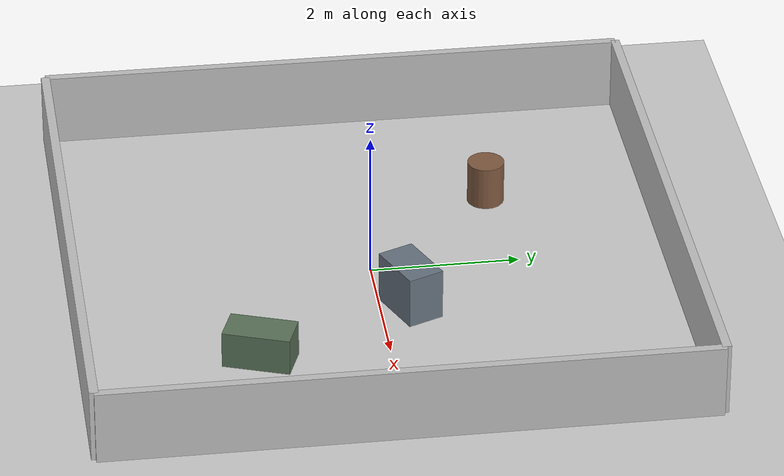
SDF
<?xml version="1.0"?>
<sdf version="1.6">
  <world name="indoor_test">
    <include>
      <uri>model://ground_plane</uri>
    </include>
    <include>
      <uri>model://sun</uri>
    </include>

    <physics name="default_physics" type="ode">
      <max_step_size>0.001</max_step_size>
      <real_time_update_rate>1000</real_time_update_rate>
    </physics>

    <model name="north_wall">
      <static>true</static>
      <pose>0 4 0.5 0 0 0</pose>
      <link name="link">
        <collision name="collision">
          <geometry>
            <box>
              <size>8 0.12 1.0</size>
            </box>
          </geometry>
        </collision>
        <visual name="visual">
          <geometry>
            <box>
              <size>8 0.12 1.0</size>
            </box>
          </geometry>
          <material>
            <ambient>0.75 0.75 0.75 1</ambient>
            <diffuse>0.75 0.75 0.75 1</diffuse>
          </material>
        </visual>
      </link>
    </model>

    <model name="south_wall">
      <static>true</static>
      <pose>0 -4 0.5 0 0 0</pose>
      <link name="link">
        <collision name="collision">
          <geometry>
            <box>
              <size>8 0.12 1.0</size>
            </box>
          </geometry>
        </collision>
        <visual name="visual">
          <geometry>
            <box>
              <size>8 0.12 1.0</size>
            </box>
          </geometry>
          <material>
            <ambient>0.75 0.75 0.75 1</ambient>
            <diffuse>0.75 0.75 0.75 1</diffuse>
          </material>
        </visual>
      </link>
    </model>

    <model name="east_wall">
      <static>true</static>
      <pose>4 0 0.5 0 0 0</pose>
      <link name="link">
        <collision name="collision">
          <geometry>
            <box>
              <size>0.12 8 1.0</size>
            </box>
          </geometry>
        </collision>
        <visual name="visual">
          <geometry>
            <box>
              <size>0.12 8 1.0</size>
            </box>
          </geometry>
          <material>
            <ambient>0.75 0.75 0.75 1</ambient>
            <diffuse>0.75 0.75 0.75 1</diffuse>
          </material>
        </visual>
      </link>
    </model>

    <model name="west_wall">
      <static>true</static>
      <pose>-4 0 0.5 0 0 0</pose>
      <link name="link">
        <collision name="collision">
          <geometry>
            <box>
              <size>0.12 8 1.0</size>
            </box>
          </geometry>
        </collision>
        <visual name="visual">
          <geometry>
            <box>
              <size>0.12 8 1.0</size>
            </box>
          </geometry>
          <material>
            <ambient>0.75 0.75 0.75 1</ambient>
            <diffuse>0.75 0.75 0.75 1</diffuse>
          </material>
        </visual>
      </link>
    </model>

    <model name="center_box">
      <static>true</static>
      <pose>1.0 0.4 0.35 0 0 0.4</pose>
      <link name="link">
        <collision name="collision">
          <geometry>
            <box>
              <size>0.8 0.5 0.7</size>
            </box>
          </geometry>
        </collision>
        <visual name="visual">
          <geometry>
            <box>
              <size>0.8 0.5 0.7</size>
            </box>
          </geometry>
          <material>
            <ambient>0.4 0.45 0.5 1</ambient>
            <diffuse>0.4 0.45 0.5 1</diffuse>
          </material>
        </visual>
      </link>
    </model>

    <model name="left_obstacle">
      <static>true</static>
      <pose>-1.6 1.8 0.3 0 0 0</pose>
      <link name="link">
        <collision name="collision">
          <geometry>
            <cylinder>
              <radius>0.25</radius>
              <length>0.6</length>
            </cylinder>
          </geometry>
        </collision>
        <visual name="visual">
          <geometry>
            <cylinder>
              <radius>0.25</radius>
              <length>0.6</length>
            </cylinder>
          </geometry>
          <material>
            <ambient>0.5 0.35 0.25 1</ambient>
            <diffuse>0.5 0.35 0.25 1</diffuse>
          </material>
        </visual>
      </link>
    </model>

    <model name="right_obstacle">
      <static>true</static>
      <pose>2.0 -1.7 0.25 0 0 -0.35</pose>
      <link name="link">
        <collision name="collision">
          <geometry>
            <box>
              <size>0.5 0.9 0.5</size>
            </box>
          </geometry>
        </collision>
        <visual name="visual">
          <geometry>
            <box>
              <size>0.5 0.9 0.5</size>
            </box>
          </geometry>
          <material>
            <ambient>0.35 0.45 0.35 1</ambient>
            <diffuse>0.35 0.45 0.35 1</diffuse>
          </material>
        </visual>
      </link>
    </model>
  </world>
</sdf>
